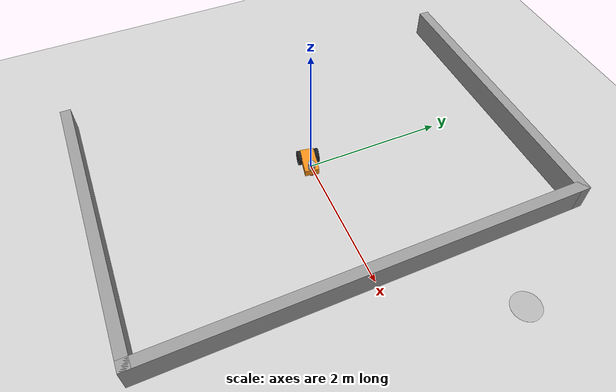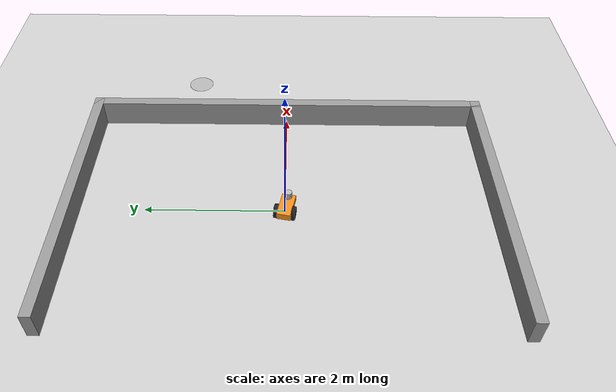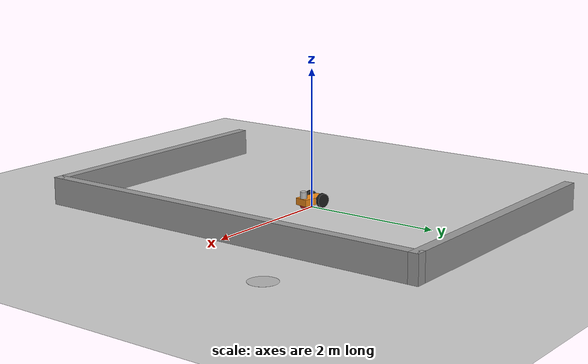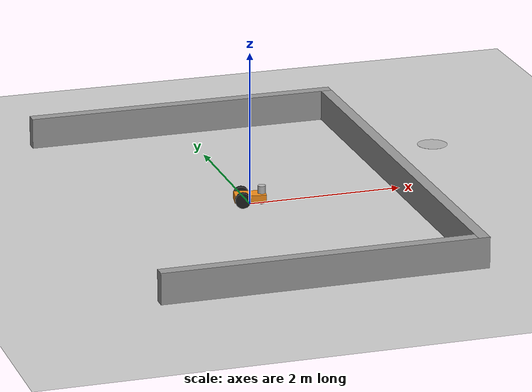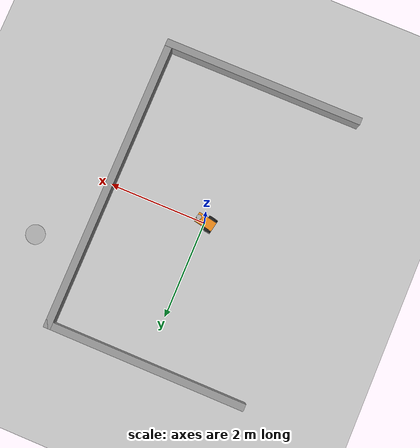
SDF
<sdf version="1.6">
 <world name="default">
  <light name="sun" type="directional">
   <pose>0 0 10 0 -0 0</pose>
   <diffuse>0.8 0.8 0.8 1</diffuse>
   <specular>0.2 0.2 0.2 1</specular>
   <attenuation>
    <range>1000</range>
    <constant>0.9</constant>
    <linear>0.01</linear>
    <quadratic>0.001</quadratic>
   </attenuation>
   <direction>-0.5 0.1 -0.9</direction>
  </light>
  <model name="ground_plane">
   <static>1</static>
   <link name="link">
    <collision name="collision">
     <geometry><plane><normal>0 0 1</normal><size>100 100</size></plane></geometry>
     <surface>
      <contact><collide_bitmask>65535</collide_bitmask></contact>
      <friction><ode><mu>100</mu><mu2>50</mu2></ode></friction>
     </surface>
    </collision>
    <visual name="visual">
     <cast_shadows>0</cast_shadows>
     <geometry><plane><normal>0 0 1</normal><size>100 100</size></plane></geometry>
     <material>
      <script><uri>file://media/materials/scripts/gazebo.material</uri><name>Gazebo/Grey</name></script>
     </material>
    </visual>
   </link>
  </model>
  <gravity>0 0 -9.8</gravity>
  <magnetic_field>6e-06 2.3e-05 -4.2e-05</magnetic_field>
  <atmosphere type="adiabatic"/>
  <physics name="default_physics" default="0" type="ode">
   <max_step_size>0.001</max_step_size>
   <real_time_factor>1</real_time_factor>
   <real_time_update_rate>1000</real_time_update_rate>
  </physics>
  <scene><ambient>0.4 0.4 0.4 1</ambient><background>0.7 0.7 0.7 1</background><shadows>1</shadows></scene>
  <spherical_coordinates>
   <surface_model>EARTH_WGS84</surface_model>
   <latitude_deg>0</latitude_deg>
   <longitude_deg>0</longitude_deg>
   <elevation>0</elevation>
   <heading_deg>0</heading_deg>
  </spherical_coordinates>
  <model name="diff_drive">
   <link name="base_link">
    <inertial>
     <pose>0.013884 0 0.095644 0 -0 0</pose>
     <mass>55.1</mass>
     <inertia>
      <ixx>0.225934</ixx>
      <ixy>0</ixy>
      <ixz>0.0326679</ixz>
      <iyy>0.830063</iyy>
      <iyz>0</iyz>
      <izz>0.817587</izz>
     </inertia>
    </inertial>
    <collision name="base_link_fixed_joint_lump__chassis_collision">
     <pose>0 0 0.1 0 -0 0</pose>
     <geometry><box><size>0.4 0.2 0.1</size></box></geometry>
    </collision>
    <collision name="base_link_fixed_joint_lump__caster_wheel_collision_1">
     <pose>0.15 0 0.05 0 -0 0</pose>
     <geometry><sphere><radius>0.05</radius></sphere></geometry>
     <surface><friction><ode><mu>0</mu><mu2>0</mu2></ode></friction></surface>
    </collision>
    <collision name="base_link_fixed_joint_lump__hokuyo_link_collision_2">
     <pose>0.15 0 0.2 0 -0 0</pose>
     <geometry><cylinder><length>0.1</length><radius>0.05</radius></cylinder></geometry>
    </collision>
    <visual name="base_link_fixed_joint_lump__chassis_visual">
     <pose>0 0 0.1 0 -0 0</pose>
     <geometry><box><size>0.4 0.2 0.1</size></box></geometry>
     <material>
      <script><name>Gazebo/Orange</name><uri>file://media/materials/scripts/gazebo.material</uri></script>
     </material>
    </visual>
    <visual name="base_link_fixed_joint_lump__caster_wheel_visual_1">
     <pose>0.15 0 0.05 0 -0 0</pose>
     <geometry><sphere><radius>0.05</radius></sphere></geometry>
     <material>
      <script><name>Gazebo/Red</name><uri>file://media/materials/scripts/gazebo.material</uri></script>
     </material>
    </visual>
    <visual name="base_link_fixed_joint_lump__hokuyo_link_visual_2">
     <pose>0.15 0 0.2 0 -0 0</pose>
     <geometry><cylinder><length>0.1</length><radius>0.05</radius></cylinder></geometry>
     <material><script><uri>__default__</uri><name>__default__</name></script></material>
    </visual>
    <sensor name="hokuyo" type="ray">
     <visualize>0</visualize>
     <update_rate>20</update_rate>
     <ray>
      <scan>
       <horizontal>
        <samples>720</samples>
        <resolution>1</resolution>
        <min_angle>-1.5708</min_angle>
        <max_angle>1.5708</max_angle>
       </horizontal>
       <vertical><samples>1</samples><min_angle>0</min_angle><max_angle>0</max_angle></vertical>
      </scan>
      <range><min>0.1</min><max>10</max><resolution>0.01</resolution></range>
      <noise><type>gaussian</type><mean>0</mean><stddev>0.01</stddev></noise>
     </ray>
     <plugin name="gpu_laser" filename="libgazebo_ros_laser.so">
      <topicName>/scan</topicName>
      <frameName>hokuyo_link</frameName>
      <robotNamespace>/</robotNamespace>
     </plugin>
     <pose>0.15 0 0.2 0 -0 0</pose>
    </sensor>
   </link>
   <link name="left_wheel">
    <pose>-0.1 0.125 0.1 0 -0 0</pose>
    <inertial>
     <pose>0 0 0 1.57079 1.57079 3.14159</pose>
     <mass>5</mass>
     <inertia>
      <ixx>0.0135417</ixx>
      <ixy>0</ixy>
      <ixz>0</ixz>
      <iyy>0.0135417</iyy>
      <iyz>0</iyz>
      <izz>0.025</izz>
     </inertia>
    </inertial>
    <collision name="left_wheel_collision">
     <pose>0 0 0 -3.14158 1.57079 -1.57078</pose>
     <geometry><cylinder><length>0.05</length><radius>0.1</radius></cylinder></geometry>
     <surface>
      <contact><ode><kp>1e+07</kp><kd>1</kd></ode></contact>
      <friction><ode><mu>1</mu><mu2>1</mu2><fdir1>1 0 0</fdir1></ode></friction>
     </surface>
    </collision>
    <visual name="left_wheel_visual">
     <pose>0 0 0 -3.14158 1.57079 -1.57078</pose>
     <geometry><cylinder><length>0.05</length><radius>0.1</radius></cylinder></geometry>
     <material>
      <script><name>Gazebo/Black</name><uri>file://media/materials/scripts/gazebo.material</uri></script>
     </material>
    </visual>
   </link>
   <joint name="left_wheel_hinge" type="revolute">
    <child>left_wheel</child>
    <parent>base_link</parent>
    <axis>
     <xyz>0 1 0</xyz>
     <limit><lower>-1e+16</lower><upper>1e+16</upper></limit>
     <dynamics><spring_reference>0</spring_reference><spring_stiffness>0</spring_stiffness></dynamics>
     <use_parent_model_frame>1</use_parent_model_frame>
    </axis>
   </joint>
   <link name="right_wheel">
    <pose>-0.1 -0.125 0.1 0 -0 0</pose>
    <inertial>
     <pose>0 0 0 1.57079 1.57079 3.14159</pose>
     <mass>5</mass>
     <inertia>
      <ixx>0.0135417</ixx>
      <ixy>0</ixy>
      <ixz>0</ixz>
      <iyy>0.0135417</iyy>
      <iyz>0</iyz>
      <izz>0.025</izz>
     </inertia>
    </inertial>
    <collision name="right_wheel_collision">
     <pose>0 0 0 -3.14158 1.57079 -1.57078</pose>
     <geometry><cylinder><length>0.05</length><radius>0.1</radius></cylinder></geometry>
     <surface>
      <contact><ode><kp>1e+07</kp><kd>1</kd></ode></contact>
      <friction><ode><mu>1</mu><mu2>1</mu2><fdir1>1 0 0</fdir1></ode></friction>
     </surface>
    </collision>
    <visual name="right_wheel_visual">
     <pose>0 0 0 -3.14158 1.57079 -1.57078</pose>
     <geometry><cylinder><length>0.05</length><radius>0.1</radius></cylinder></geometry>
     <material>
      <script><name>Gazebo/Black</name><uri>file://media/materials/scripts/gazebo.material</uri></script>
     </material>
    </visual>
   </link>
   <joint name="right_wheel_hinge" type="revolute">
    <child>right_wheel</child>
    <parent>base_link</parent>
    <axis>
     <xyz>0 1 0</xyz>
     <limit><lower>-1e+16</lower><upper>1e+16</upper></limit>
     <dynamics><spring_reference>0</spring_reference><spring_stiffness>0</spring_stiffness></dynamics>
     <use_parent_model_frame>1</use_parent_model_frame>
    </axis>
   </joint>
   <static>0</static>
   <plugin name="differential_drive_controller" filename="libgazebo_ros_diff_drive.so">
    <leftJoint>left_wheel_hinge</leftJoint>
    <rightJoint>right_wheel_hinge</rightJoint>
    <robotBaseFrame>base_link</robotBaseFrame>
    <wheelSeparation>0.2</wheelSeparation>
    <wheelDiameter>0.2</wheelDiameter>
    <publishWheelJointState>true</publishWheelJointState>
    <robotNamespace>/</robotNamespace>
   </plugin>
   <pose>-0.007851 -0.019679 -7e-06 5e-06 -4.8e-05 -0.191858</pose>
  </model>
  <model name="new_robot_trap">
   <link name="Wall_0">
    <collision name="Wall_0_Collision">
     <geometry><box><size>6.15 0.15 0.4</size></box></geometry>
     <pose>0 0 0.2 0 -0 0</pose>
    </collision>
    <visual name="Wall_0_Visual">
     <pose>0 0 0.2 0 -0 0</pose>
     <geometry><box><size>6.15 0.15 0.4</size></box></geometry>
     <material>
      <script><uri>file://media/materials/scripts/gazebo.material</uri><name>Gazebo/Grey</name></script>
      <ambient>1 1 1 1</ambient>
     </material>
     <meta><layer>0</layer></meta>
    </visual>
    <pose>2 0 0 0 -0 1.5708</pose>
   </link>
   <link name="Wall_2">
    <collision name="Wall_2_Collision">
     <geometry><box><size>4.15 0.15 0.4</size></box></geometry>
     <pose>0 0 0.2 0 -0 0</pose>
    </collision>
    <visual name="Wall_2_Visual">
     <pose>0 0 0.2 0 -0 0</pose>
     <geometry><box><size>4.15 0.15 0.4</size></box></geometry>
     <material>
      <script><uri>file://media/materials/scripts/gazebo.material</uri><name>Gazebo/Grey</name></script>
      <ambient>1 1 1 1</ambient>
     </material>
     <meta><layer>0</layer></meta>
    </visual>
    <pose>0 3 0 0 -0 3.14159</pose>
   </link>
   <link name="Wall_5">
    <collision name="Wall_5_Collision">
     <geometry><box><size>4.15 0.15 0.4</size></box></geometry>
     <pose>0 0 0.2 0 -0 0</pose>
    </collision>
    <visual name="Wall_5_Visual">
     <pose>0 0 0.2 0 -0 0</pose>
     <geometry><box><size>4.15 0.15 0.4</size></box></geometry>
     <material>
      <script><uri>file://media/materials/scripts/gazebo.material</uri><name>Gazebo/Grey</name></script>
      <ambient>1 1 1 1</ambient>
     </material>
     <meta><layer>0</layer></meta>
    </visual>
    <pose>0 -3 0 0 -0 3.14159</pose>
   </link>
   <static>1</static>
  </model>
  <model name="goal_cylinder">
   <link name="link">
    <inertial>
     <mass>1</mass>
     <inertia><ixx>0.145833</ixx><ixy>0</ixy><ixz>0</ixz><iyy>0.145833</iyy><iyz>0</iyz><izz>0.125</izz></inertia>
    </inertial>
    <visual name="visual">
     <geometry><cylinder><radius>0.2</radius><length>0.001</length></cylinder></geometry>
     <material>
      <shader type="pixel"><normal_map>__default__</normal_map></shader>
      <ambient>0.9 0.9 0.9 1</ambient>
      <diffuse>0.7 0.7 0.7 1</diffuse>
      <specular>0.01 0.01 0.01 1</specular>
      <emissive>0 0 0 1</emissive>
     </material>
    </visual>
    <collision name="collision">
     <geometry><cylinder><radius>0.2</radius><length>0.001</length></cylinder></geometry>
     <surface>
      <friction>
       <ode><mu>1</mu><mu2>1</mu2><fdir1>0 0 0</fdir1><slip1>0</slip1><slip2>0</slip2></ode>
       <torsional>
        <coefficient>1</coefficient>
        <patch_radius>0</patch_radius>
        <surface_radius>0</surface_radius>
        <use_patch_radius>1</use_patch_radius>
        <ode><slip>0</slip></ode>
       </torsional>
      </friction>
      <bounce><restitution_coefficient>0</restitution_coefficient><threshold>1e+06</threshold></bounce>
      <contact>
       <collide_without_contact>0</collide_without_contact>
       <collide_without_contact_bitmask>1</collide_without_contact_bitmask>
       <collide_bitmask>1</collide_bitmask>
       <ode>
        <soft_cfm>0</soft_cfm>
        <soft_erp>0.2</soft_erp>
        <kp>1e+13</kp>
        <kd>1</kd>
        <max_vel>0.01</max_vel>
        <min_depth>0</min_depth>
       </ode>
       <bullet>
        <split_impulse>1</split_impulse>
        <split_impulse_penetration_threshold>-0.01</split_impulse_penetration_threshold>
        <soft_cfm>0</soft_cfm>
        <soft_erp>0.2</soft_erp>
        <kp>1e+13</kp>
        <kd>1</kd>
       </bullet>
      </contact>
     </surface>
    </collision>
   </link>
   <static>0</static>
   <pose>3 1.5 0 0 -0 0</pose>
  </model>
 </world>
</sdf>
